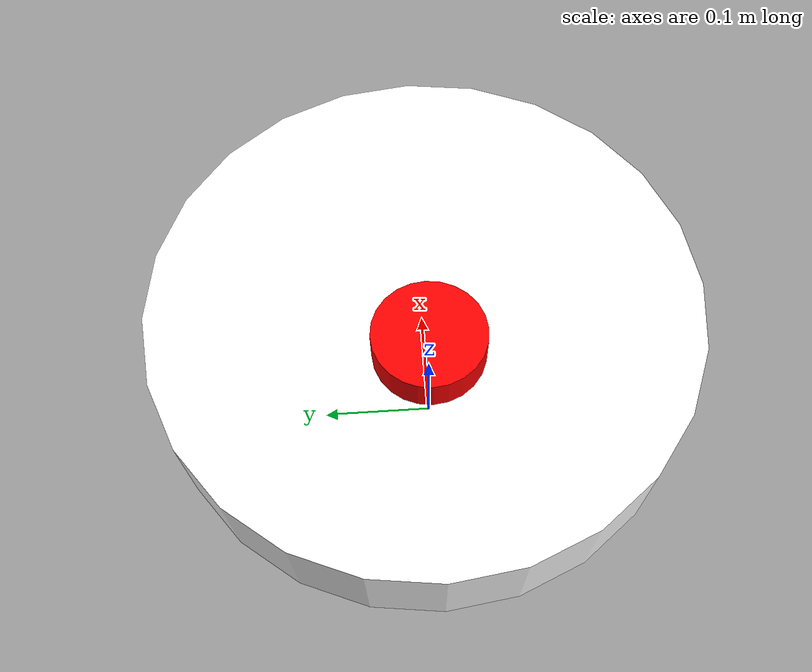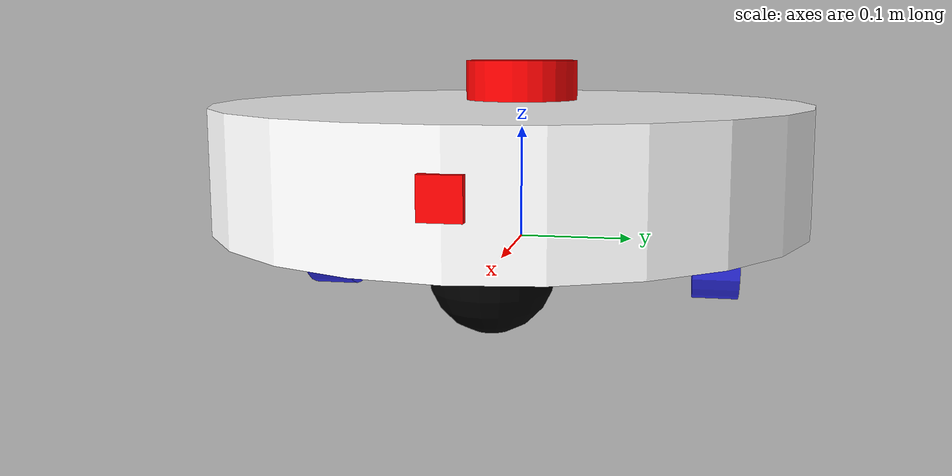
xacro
<?xml version="1.0"?>
<robot xmlns:xacro="http://www.ros.org/wiki/xacro"  name="robot">

    <!-- Example link -->

    <!-- to pass from gazebo_control to ros2_control-->
    <xacro:arg name="use_ros2_control" default="true"/>

    <!-- including robot core structure -->
    <xacro:include filename= 'robot_core.xacro' />

    <!-- need to comment the control not used -->

    <!-- including robot gazebo control -->

    <!-- including ros2_control -->

    <!-- PROBLEM 3 -->
    <xacro:if value="$(arg use_ros2_control)">
        <xacro:include filename="ros2_control.xacro" />
    </xacro:if>

    <xacro:unless value="$(arg use_ros2_control)">
        <xacro:include filename="gazebo_control.xacro" />
    </xacro:unless>

    <!-- including lidar in gazebo -->
    <xacro:include filename= 'lidar.xacro' />

    <!-- need to comment the camera not used -->

    <!-- including camera in gazebo -->
    <xacro:include filename= 'camera.xacro' />

    <!-- including depth camera in gazebo -->

</robot>

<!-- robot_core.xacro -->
<robot xmlns:xacro="http://www.ros.org/wiki/xacro"  name="robot">

    <xacro:include filename="inertial_macros.xacro" />

    <!-- MATERIALS -->

    <material name="white">
        <color rgba="1 1 1 1"/>
    </material>

    <material name="orange">
        <color rgba="1 0.3 0.1 1"/>
    </material>

    <material name="blue">
        <color rgba="0.2 0.2 1 1"/>
    </material>

    <material name="black">
        <color rgba="0 0 0 1"/>
    </material>

    <material name="red">
        <color rgba="1 0 0 1"/>
    </material>

    <!-- BASE LINK & CHASSIS -->

    <link name="base_link">
    </link>

    <joint name="chassis_joint" type="fixed">
        <parent link="base_link"/>
        <child link="chassis"/>
        <origin xyz="-0.1 0 0"/>
    </joint>

    <link name="chassis">
        <visual>
            <origin xyz="0.15 0 0.075" rpy="0 0 0"/>
            <geometry>
                <cylinder length="0.1" radius="0.25" />/>
            </geometry>
            <material name="white"/>
        </visual>
        <collision>
            <origin xyz="0.15 0 0.075" rpy="0 0 0"/>
            <geometry>
                <cylinder length="0.1" radius="0.25" />/>
            </geometry>
        </collision>
        <xacro:inertial_box mass="0.5" x="0.3" y="0.3" z="0.15">
            <origin xyz="0.15 0 0.075" rpy="0 0 0"/>
        </xacro:inertial_box>
    </link>

    <gazebo reference="chassis">
        <material> Gazebo/White </material>
    </gazebo>

    <!-- LEFT WHEEL -->

    <joint name="left_wheel_joint" type="continuous">
        <parent link="base_link"/>
        <child link="left_wheel"/>
        <origin xyz="0 0.175 0" rpy="-${pi/2} 0 0"/>
        <axis xyz="0 0 1"/>
    </joint>

    <link name="left_wheel">
        <visual>
            <geometry>
                <cylinder length="0.04" radius="0.05" />/>
            </geometry>
            <material name="blue"/>
        </visual>
        <!--PROBLEM 2 wheel drift solved replacing cylinder with sphere-->
        <collision>
            <geometry>
                <sphere radius="0.05" />/>
            </geometry>
        </collision>
        <xacro:inertial_cylinder mass="0.1" length="0.05" radius="0.05">
            <origin xyz="0 0 0" rpy="0 0 0"/>
        </xacro:inertial_cylinder>
    </link>

    <gazebo reference="left_wheel">
        <material> Gazebo/Blue </material>
    </gazebo>

    <!-- RIGHT WHEEL -->

    <joint name="right_wheel_joint" type="continuous">
        <parent link="base_link"/>
        <child link="right_wheel"/>
        <origin xyz="0 -0.175 0" rpy="${pi/2} 0 0"/>
        <axis xyz="0 0 -1"/>
    </joint>

    <link name="right_wheel">
        <visual>
            <geometry>
                <cylinder length="0.04" radius="0.05" />/>
            </geometry>
            <material name="blue"/>
        </visual>
        <collision>
            <geometry>
                <sphere radius="0.05" />/>
            </geometry>
        </collision>
        <xacro:inertial_cylinder mass="0.1" length="0.05" radius="0.05">
            <origin xyz="0 0 0" rpy="0 0 0"/>
        </xacro:inertial_cylinder>
    </link>

    <gazebo reference="right_wheel">
        <material> Gazebo/Blue </material>
    </gazebo>

    <!-- CASTER WHEEL -->

    <joint name="caster_wheel_joint" type="fixed">
        <parent link="chassis"/>
        <child link="caster_wheel"/>
        <origin xyz="0.24 0 0" rpy="0 0 0"/>
    </joint>

    <link name="caster_wheel">
        <visual>
            <geometry>
                <sphere radius="0.05" />
            </geometry>
            <material name="black"/>
        </visual>
        <collision>
            <geometry>
                <sphere radius="0.05" />
            </geometry>
        </collision>
        <xacro:inertial_sphere mass="0.1" radius="0.05">
            <origin xyz="0 0 0" rpy="0 0 0"/>
        </xacro:inertial_sphere>
    </link>

    <gazebo reference="caster_wheel">
        <material> Gazebo/Black </material>
        <!-- reducing frictions -->
        <mu1 value="0.001"/>
        <mu2 value="0.001"/>
    </gazebo>

</robot>

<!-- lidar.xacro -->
<robot xmlns:xacro="http://www.ros.org/wiki/xacro" >

    <joint name="laser_joint" type="fixed">
        <parent link="chassis"/>
        <child link="laser_frame"/>
        <origin xyz="0.1 0 0.14" rpy="0 0 0"/>
    </joint>

    <link name="laser_frame">
        <visual>
            <geometry>
                <cylinder radius="0.05" length="0.04"/>
            </geometry>
            <material name="red"/>
        </visual>
        <collision>
            <geometry>
                <cylinder radius="0.05" length="0.04"/>
            </geometry>
        </collision>
        <xacro:inertial_cylinder mass="0.1" length="0.04" radius="0.05">
            <origin xyz="0 0 0" rpy="0 0 0"/>
        </xacro:inertial_cylinder>
    </link>

    <gazebo reference="laser_frame">
        <material>Gazebo/Red</material>
        <sensor name="laser" type="ray">
            <pose> 0 0 0 0 0 0 </pose>
            <!-- put to false to not visualize lidar -->
            <visualize>false</visualize>
            <update_rate>10</update_rate>
            <ray>
                <scan>
                    <horizontal>
                        <samples>360</samples>
                        <min_angle>-3.14</min_angle>
                        <max_angle>3.14</max_angle>
                    </horizontal>
                </scan>
                <range>
                    <min>0.3</min>
                    <max>12</max>
                </range>
            </ray>
            <plugin name="laser_controller" filename="libgazebo_ros_ray_sensor.so">
                <ros>
                    <argument>~/out:=scan</argument>
                </ros>
                <output_type>sensor_msgs/LaserScan</output_type>
                <frame_name>laser_frame</frame_name>
            </plugin>
        </sensor>
    </gazebo>

</robot>

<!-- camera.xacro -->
<robot xmlns:xacro="http://www.ros.org/wiki/xacro" >

    <joint name="camera_joint" type="fixed">
        <parent link="chassis"/>
        <child link="camera_link"/>
        <origin xyz="0.4 0 0.08" rpy="0 0 0"/>
    </joint>

    <link name="camera_link">
        <visual>
            <geometry>
                <box size="0.010 0.03 0.03"/>
            </geometry>
            <material name="red"/>
        </visual>
    </link>

   <joint name="camera_optical_joint" type="fixed">
        <origin xyz="0 0 0" rpy="${-pi/2} 0 ${-pi/2}" />
        <parent link="camera_link" />
        <child link="camera_link_optical" />
    </joint>

    <link name="camera_link_optical"></link>

    <gazebo reference="camera_link">
        <material>Gazebo/Red</material>
        <sensor name="camera" type="camera">
            <pose> 0 0 0 0 0 0 </pose>
            <!-- put to false to not visualize camera -->
            <visualize>true</visualize>
            <update_rate>10</update_rate>
            <camera>
                <horizontal_fov>1.089</horizontal_fov>
                <image>
                    <format>R8G8B8</format>
                    <width>640</width>
                    <height>480</height>
                </image>
                <clip>
                    <near>0.05</near>
                    <far>8.0</far>
                </clip>
            </camera>
            <plugin name="camera_controller" filename="libgazebo_ros_camera.so">
                <frame_name>camera_link_optical</frame_name>
            </plugin>
        </sensor>
    </gazebo>

</robot>
